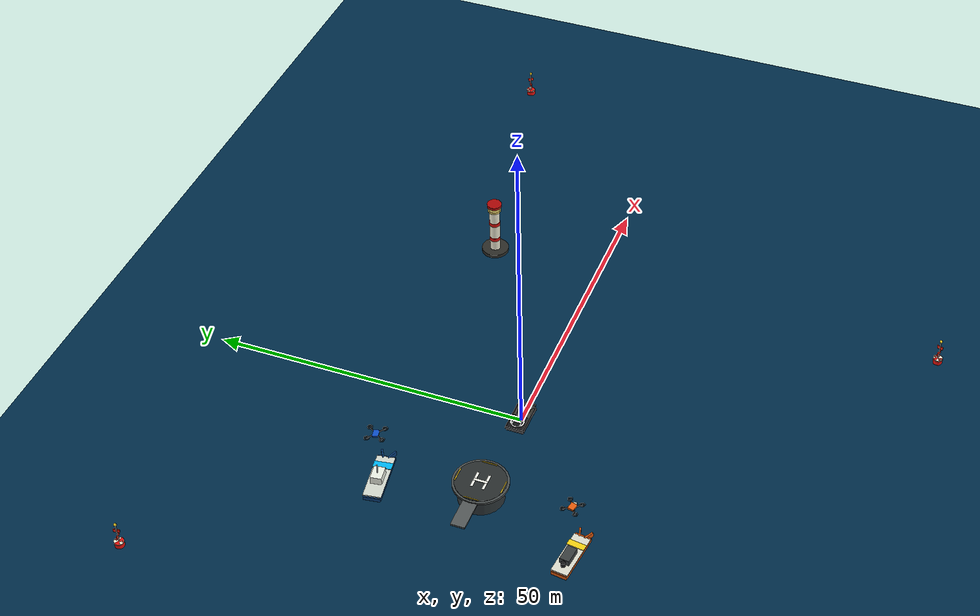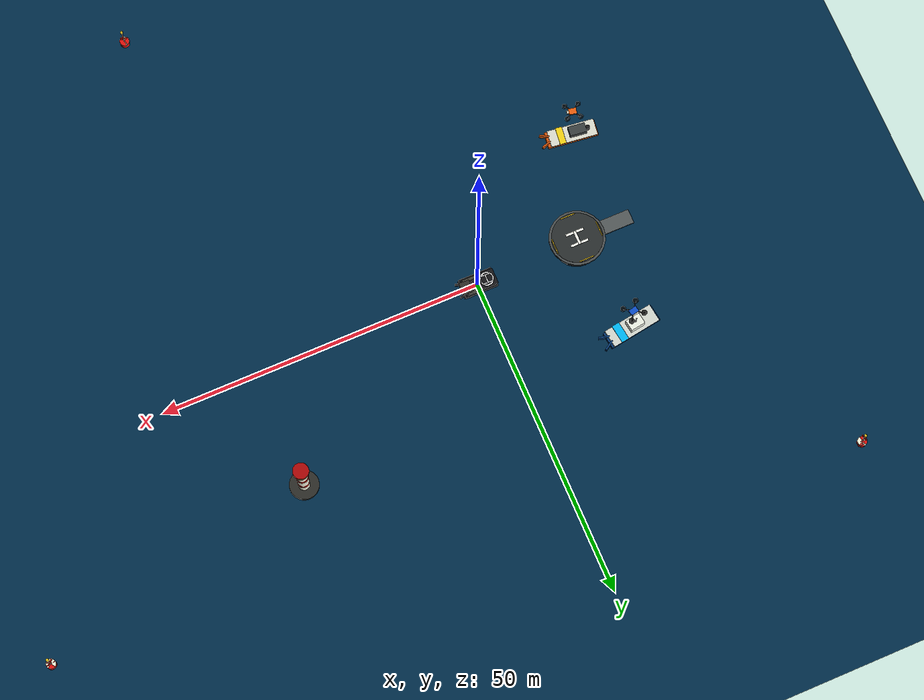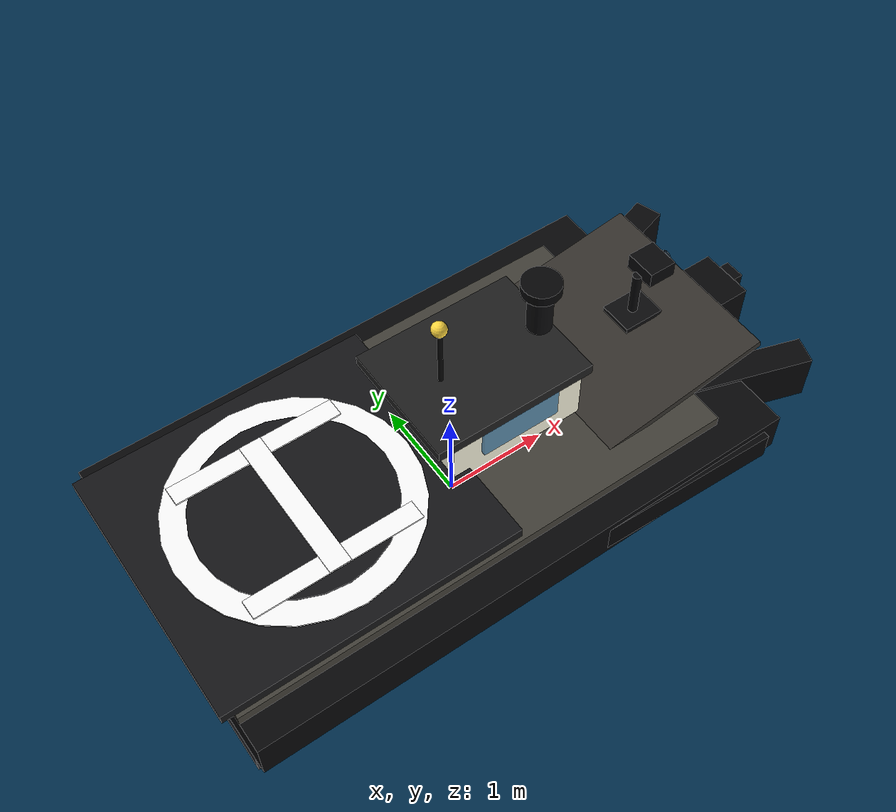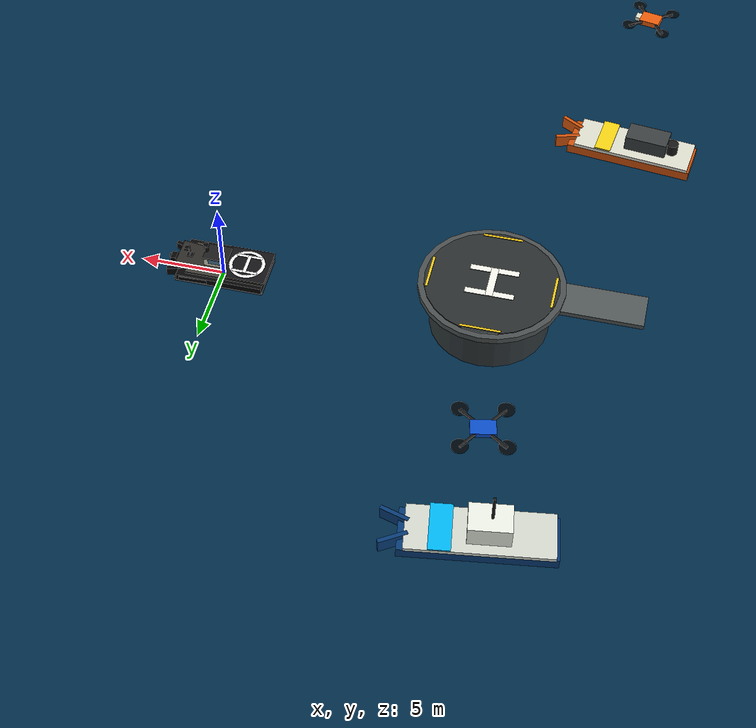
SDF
<sdf version="1.10">
 <world name="default">
  <plugin filename="gz-sim-physics-system" name="gz::sim::systems::Physics"/>
  <plugin filename="gz-sim-user-commands-system" name="gz::sim::systems::UserCommands"/>
  <plugin filename="gz-sim-scene-broadcaster-system" name="gz::sim::systems::SceneBroadcaster"/>
  <plugin filename="gz-sim-contact-system" name="gz::sim::systems::Contact"/>
  <plugin filename="gz-sim-imu-system" name="gz::sim::systems::Imu"/>
  <plugin filename="gz-sim-air-pressure-system" name="gz::sim::systems::AirPressure"/>
  <plugin filename="gz-sim-air-speed-system" name="gz::sim::systems::AirSpeed"/>
  <plugin filename="gz-sim-apply-link-wrench-system" name="gz::sim::systems::ApplyLinkWrench"/>
  <plugin filename="gz-sim-navsat-system" name="gz::sim::systems::NavSat"/>
  <plugin filename="gz-sim-magnetometer-system" name="gz::sim::systems::Magnetometer"/>
  <plugin filename="gz-sim-sensors-system" name="gz::sim::systems::Sensors">
   <render_engine>ogre2</render_engine>
  </plugin>
  <physics type="ode">
   <max_step_size>0.0040000000000000001</max_step_size>
   <real_time_factor>1</real_time_factor>
   <real_time_update_rate>250</real_time_update_rate>
  </physics>
  <gravity>0 0 -9.8000000000000007</gravity>
  <magnetic_field>6.0000000000000002e-06 2.3e-05 -4.1999999999999998e-05</magnetic_field>
  <atmosphere type="adiabatic"/>
  <scene>
   <grid>false</grid>
   <ambient>0.400000006 0.400000006 0.400000006 1</ambient>
   <background>0.699999988 0.699999988 0.699999988 1</background>
   <shadows>true</shadows>
  </scene>
  <spherical_coordinates>
   <surface_model>EARTH_WGS84</surface_model>
   <world_frame_orientation>ENU</world_frame_orientation>
   <latitude_deg>47.397971057728974</latitude_deg>
   <longitude_deg>8.5461637398001464</longitude_deg>
   <elevation>0</elevation>
   <heading_deg>0</heading_deg>
  </spherical_coordinates>
  <model name="ocean_plane">
   <static>true</static>
   <link name="ocean_link">
    <visual name="ocean_visual">
     <pose>0 0 -0.02 0 0 0</pose>
     <geometry><plane><normal>0 0 1</normal><size>1000 1000</size></plane></geometry>
     <material>
      <ambient>0 0.08 0.16 0.45</ambient>
      <diffuse>0 0.18 0.3 0.45</diffuse>
      <specular>0.03 0.05 0.06 1</specular>
     </material>
    </visual>
    <collision name="ocean_collision">
     <geometry><plane><normal>0 0 1</normal><size>300 300</size></plane></geometry>
    </collision>
    <inertial>
     <mass>1</mass>
     <inertia><ixx>1</ixx><ixy>0</ixy><ixz>0</ixz><iyy>1</iyy><iyz>0</iyz><izz>1</izz></inertia>
    </inertial>
   </link>
  </model>
  <include><uri>model://shore_helipad</uri><name>shore_helipad</name><pose>-16 0 0 0 0 0</pose></include>
  <include>
   <uri>model://medium_buoy</uri>
   <name>medium_buoy_west_channel</name>
   <pose>-42 44 0 0 0 0.25</pose>
  </include>
  <include>
   <uri>model://medium_buoy</uri>
   <name>medium_buoy_south_channel</name>
   <pose>34 -56 0 0 0 -0.35</pose>
  </include>
  <include>
   <uri>model://medium_buoy</uri>
   <name>medium_buoy_east_channel</name>
   <pose>78 28 0 0 0 0.7</pose>
  </include>
  <plugin filename="libDroneDeckFollower.so" name="gz::sim::systems::DroneDeckFollower">
   <boat_name>landing_boat</boat_name>
   <drone_name>x500_0</drone_name>
   <deck_offset>-1.518 0 0.56 0 0 0</deck_offset>
   <release_topic>/model/x500_0/release_from_deck</release_topic>
   <relock_duration>4.0</relock_duration>
   <release_vertical_speed>0.9</release_vertical_speed>
   <release_after>1000000</release_after>
   <initially_released>true</initially_released>
  </plugin>
  <model name="navigation_lighthouse">
   <static>true</static>
   <pose>35 18 0 0 0 0</pose>
   <link name="lighthouse_link">
    <collision name="base_collision">
     <pose>0 0 0.3 0 0 0</pose>
     <geometry><cylinder><radius>2.2</radius><length>0.6</length></cylinder></geometry>
    </collision>
    <visual name="base_visual">
     <pose>0 0 0.3 0 0 0</pose>
     <geometry><cylinder><radius>2.2</radius><length>0.6</length></cylinder></geometry>
     <material>
      <ambient>0.12 0.12 0.12 1</ambient>
      <diffuse>0.18 0.18 0.16 1</diffuse>
      <specular>0.05 0.05 0.05 1</specular>
     </material>
    </visual>
    <collision name="tower_collision">
     <pose>0 0 4.4 0 0 0</pose>
     <geometry><cylinder><radius>0.85</radius><length>8.2</length></cylinder></geometry>
    </collision>
    <visual name="tower_white_visual">
     <pose>0 0 4.4 0 0 0</pose>
     <geometry><cylinder><radius>0.85</radius><length>8.2</length></cylinder></geometry>
     <material>
      <ambient>0.85 0.83 0.76 1</ambient>
      <diffuse>0.95 0.93 0.84 1</diffuse>
      <specular>0.2 0.2 0.18 1</specular>
     </material>
    </visual>
    <visual name="red_band_lower_visual">
     <pose>0 0 2.7 0 0 0</pose>
     <geometry><cylinder><radius>0.88</radius><length>0.65</length></cylinder></geometry>
     <material>
      <ambient>0.55 0.04 0.03 1</ambient>
      <diffuse>0.85 0.06 0.04 1</diffuse>
      <specular>0.15 0.03 0.03 1</specular>
     </material>
    </visual>
    <visual name="red_band_upper_visual">
     <pose>0 0 5.8 0 0 0</pose>
     <geometry><cylinder><radius>0.88</radius><length>0.65</length></cylinder></geometry>
     <material>
      <ambient>0.55 0.04 0.03 1</ambient>
      <diffuse>0.85 0.06 0.04 1</diffuse>
      <specular>0.15 0.03 0.03 1</specular>
     </material>
    </visual>
    <visual name="lantern_room_visual">
     <pose>0 0 8.8 0 0 0</pose>
     <geometry><cylinder><radius>1.05</radius><length>0.9</length></cylinder></geometry>
     <material>
      <ambient>0.95 0.82 0.32 0.85</ambient>
      <diffuse>1 0.88 0.4 0.85</diffuse>
      <specular>1 0.95 0.7 1</specular>
     </material>
    </visual>
    <visual name="roof_visual">
     <pose>0 0 9.55 0 0 0</pose>
     <geometry><cylinder><radius>1.2</radius><length>0.45</length></cylinder></geometry>
     <material>
      <ambient>0.45 0.02 0.02 1</ambient>
      <diffuse>0.7 0.03 0.03 1</diffuse>
      <specular>0.18 0.04 0.04 1</specular>
     </material>
    </visual>
    <light name="beacon_light" type="point">
     <pose>0 0 8.95 0 0 0</pose>
     <cast_shadows>false</cast_shadows>
     <intensity>3</intensity>
     <diffuse>1 0.86 0.35 1</diffuse>
     <specular>1 0.9 0.55 1</specular>
     <attenuation>
      <range>80</range>
      <constant>0.6</constant>
      <linear>0.02</linear>
      <quadratic>0.001</quadratic>
     </attenuation>
    </light>
   </link>
  </model>
  <include><uri>model://simple_boat</uri><name>landing_boat</name><pose>0 0 0.55 0 0 0</pose></include>
  <include>
   <uri>model://fleet_boat_blue</uri>
   <name>landing_boat_02</name>
   <pose>-18 15 0.58 0 0 0.15</pose>
  </include>
  <include>
   <uri>model://fleet_boat_orange</uri>
   <name>landing_boat_03</name>
   <pose>-22 -16 0.58 0 0 -0.12</pose>
  </include>
  <include><uri>model://fleet_uav_blue</uri><name>fleet_uav_02</name><pose>-18 15 9.5 0 0 0.2</pose></include>
  <include>
   <uri>model://fleet_uav_orange</uri>
   <name>fleet_uav_03</name>
   <pose>-22 -16 10.5 0 0 -0.2</pose>
  </include>
  <light name="directionallight" type="directional">
   <pose>3.6650413048508694 0.062467871162392719 2 0 0 0</pose>
   <intensity>1</intensity>
   <direction>0 0 -1</direction>
   <diffuse>0.800000012 0.800000012 0.800000012 1</diffuse>
   <specular>0.200000003 0.200000003 0.200000003 1</specular>
   <attenuation>
    <range>1000</range>
    <linear>0.01</linear>
    <constant>0.90000000000000002</constant>
    <quadratic>0.001</quadratic>
   </attenuation>
   <spot><inner_angle>0</inner_angle><outer_angle>0</outer_angle><falloff>0</falloff></spot>
  </light>
 </world>
</sdf>

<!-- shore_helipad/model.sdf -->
<sdf version="1.8">
  <model name="shore_helipad">
    <static>true</static>
    <link name="platform">
      <collision name="foundation_collision">
        <pose>0 0 0 0 0 0</pose>
        <geometry>
          <cylinder>
            <radius>3.45</radius>
            <length>6.0</length>
          </cylinder>
        </geometry>
      </collision>
      <visual name="foundation_visual">
        <pose>0 0 0 0 0 0</pose>
        <geometry>
          <cylinder>
            <radius>3.45</radius>
            <length>6.0</length>
          </cylinder>
        </geometry>
        <material>
          <ambient>0.12 0.14 0.15 1</ambient>
          <diffuse>0.18 0.21 0.22 1</diffuse>
          <specular>0.18 0.2 0.2 1</specular>
        </material>
      </visual>

      <collision name="deck_collision">
        <pose>0 0 3.0 0 0 0</pose>
        <geometry>
          <cylinder>
            <radius>4.2</radius>
            <length>0.36</length>
          </cylinder>
        </geometry>
      </collision>
      <visual name="deck_edge_visual">
        <pose>0 0 3.0 0 0 0</pose>
        <geometry>
          <cylinder>
            <radius>4.2</radius>
            <length>0.36</length>
          </cylinder>
        </geometry>
        <material>
          <ambient>0.22 0.24 0.24 1</ambient>
          <diffuse>0.3 0.32 0.32 1</diffuse>
          <specular>0.2 0.2 0.2 1</specular>
        </material>
      </visual>
      <visual name="deck_surface_visual">
        <pose>0 0 3.205 0 0 0</pose>
        <geometry>
          <cylinder>
            <radius>3.85</radius>
            <length>0.05</length>
          </cylinder>
        </geometry>
        <material>
          <ambient>0.12 0.14 0.14 1</ambient>
          <diffuse>0.17 0.19 0.19 1</diffuse>
          <specular>0.08 0.08 0.08 1</specular>
        </material>
      </visual>

      <collision name="shore_walkway_collision">
        <pose>-5.3 0 2.88 0 0 0</pose>
        <geometry>
          <box>
            <size>6.8 2.2 0.28</size>
          </box>
        </geometry>
      </collision>
      <visual name="shore_walkway_visual">
        <pose>-5.3 0 2.88 0 0 0</pose>
        <geometry>
          <box>
            <size>6.8 2.2 0.28</size>
          </box>
        </geometry>
        <material>
          <ambient>0.25 0.27 0.27 1</ambient>
          <diffuse>0.34 0.36 0.36 1</diffuse>
          <specular>0.12 0.12 0.12 1</specular>
        </material>
      </visual>

      <visual name="h_left_visual">
        <pose>0 -0.9 3.245 0 0 0</pose>
        <geometry>
          <box>
            <size>2.8 0.38 0.04</size>
          </box>
        </geometry>
        <material>
          <ambient>0.92 0.92 0.88 1</ambient>
          <diffuse>1 1 0.96 1</diffuse>
          <specular>0.15 0.15 0.15 1</specular>
        </material>
      </visual>
      <visual name="h_right_visual">
        <pose>0 0.9 3.245 0 0 0</pose>
        <geometry>
          <box>
            <size>2.8 0.38 0.04</size>
          </box>
        </geometry>
        <material>
          <ambient>0.92 0.92 0.88 1</ambient>
          <diffuse>1 1 0.96 1</diffuse>
          <specular>0.15 0.15 0.15 1</specular>
        </material>
      </visual>
      <visual name="h_crossbar_visual">
        <pose>0 0 3.247 0 0 0</pose>
        <geometry>
          <box>
            <size>0.42 2.15 0.045</size>
          </box>
        </geometry>
        <material>
          <ambient>0.92 0.92 0.88 1</ambient>
          <diffuse>1 1 0.96 1</diffuse>
          <specular>0.15 0.15 0.15 1</specular>
        </material>
      </visual>

      <visual name="edge_north_visual">
        <pose>0 3.55 3.245 0 0 0</pose>
        <geometry>
          <box>
            <size>2.3 0.14 0.045</size>
          </box>
        </geometry>
        <material>
          <ambient>0.92 0.72 0.08 1</ambient>
          <diffuse>1 0.82 0.1 1</diffuse>
          <specular>0.35 0.3 0.08 1</specular>
        </material>
      </visual>
      <visual name="edge_south_visual">
        <pose>0 -3.55 3.245 0 0 0</pose>
        <geometry>
          <box>
            <size>2.3 0.14 0.045</size>
          </box>
        </geometry>
        <material>
          <ambient>0.92 0.72 0.08 1</ambient>
          <diffuse>1 0.82 0.1 1</diffuse>
          <specular>0.35 0.3 0.08 1</specular>
        </material>
      </visual>
      <visual name="edge_east_visual">
        <pose>3.55 0 3.245 0 0 1.5708</pose>
        <geometry>
          <box>
            <size>2.3 0.14 0.045</size>
          </box>
        </geometry>
        <material>
          <ambient>0.92 0.72 0.08 1</ambient>
          <diffuse>1 0.82 0.1 1</diffuse>
          <specular>0.35 0.3 0.08 1</specular>
        </material>
      </visual>
      <visual name="edge_west_visual">
        <pose>-3.55 0 3.245 0 0 1.5708</pose>
        <geometry>
          <box>
            <size>2.3 0.14 0.045</size>
          </box>
        </geometry>
        <material>
          <ambient>0.92 0.72 0.08 1</ambient>
          <diffuse>1 0.82 0.1 1</diffuse>
          <specular>0.35 0.3 0.08 1</specular>
        </material>
      </visual>
    </link>
  </model>
</sdf>

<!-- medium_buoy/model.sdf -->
<sdf version="1.8">
  <model name="medium_buoy">
    <static>true</static>
    <link name="body">
      <collision name="base_collision">
        <pose>0 0 0.45 0 0 0</pose>
        <geometry>
          <cylinder>
            <radius>0.7</radius>
            <length>0.9</length>
          </cylinder>
        </geometry>
      </collision>

      <collision name="mast_collision">
        <pose>0 0 2.55 0 0 0</pose>
        <geometry>
          <cylinder>
            <radius>0.11</radius>
            <length>3.3</length>
          </cylinder>
        </geometry>
      </collision>

      <collision name="daymark_lower_collision">
        <pose>0 0 2.0 0 0 0</pose>
        <geometry>
          <box>
            <size>1.05 0.12 0.65</size>
          </box>
        </geometry>
      </collision>

      <collision name="daymark_upper_collision">
        <pose>0 0 3.1 0 0 1.5708</pose>
        <geometry>
          <box>
            <size>1.05 0.12 0.65</size>
          </box>
        </geometry>
      </collision>

      <visual name="base_float">
        <pose>0 0 0.45 0 0 0</pose>
        <geometry>
          <cylinder>
            <radius>0.72</radius>
            <length>0.9</length>
          </cylinder>
        </geometry>
        <material>
          <ambient>0.65 0.05 0.04 1</ambient>
          <diffuse>0.92 0.07 0.05 1</diffuse>
          <specular>0.25 0.04 0.04 1</specular>
        </material>
      </visual>

      <visual name="white_band">
        <pose>0 0 0.82 0 0 0</pose>
        <geometry>
          <cylinder>
            <radius>0.73</radius>
            <length>0.16</length>
          </cylinder>
        </geometry>
        <material>
          <ambient>0.92 0.9 0.82 1</ambient>
          <diffuse>1 0.98 0.88 1</diffuse>
          <specular>0.45 0.45 0.4 1</specular>
        </material>
      </visual>

      <visual name="tower_mast">
        <pose>0 0 2.55 0 0 0</pose>
        <geometry>
          <cylinder>
            <radius>0.08</radius>
            <length>3.3</length>
          </cylinder>
        </geometry>
        <material>
          <ambient>0.04 0.04 0.04 1</ambient>
          <diffuse>0.06 0.06 0.06 1</diffuse>
          <specular>0.2 0.2 0.2 1</specular>
        </material>
      </visual>

      <visual name="daymark_lower">
        <pose>0 0 2.0 0 0 0</pose>
        <geometry>
          <box>
            <size>0.95 0.08 0.55</size>
          </box>
        </geometry>
        <material>
          <ambient>0.85 0.1 0.06 1</ambient>
          <diffuse>1 0.15 0.08 1</diffuse>
          <specular>0.3 0.05 0.03 1</specular>
        </material>
      </visual>

      <visual name="daymark_upper">
        <pose>0 0 3.1 0 0 1.5708</pose>
        <geometry>
          <box>
            <size>0.95 0.08 0.55</size>
          </box>
        </geometry>
        <material>
          <ambient>0.85 0.1 0.06 1</ambient>
          <diffuse>1 0.15 0.08 1</diffuse>
          <specular>0.3 0.05 0.03 1</specular>
        </material>
      </visual>

      <visual name="top_beacon">
        <pose>0 0 4.35 0 0 0</pose>
        <geometry>
          <sphere>
            <radius>0.22</radius>
          </sphere>
        </geometry>
        <material>
          <ambient>1 0.78 0.1 1</ambient>
          <diffuse>1 0.86 0.15 1</diffuse>
          <specular>1 0.9 0.35 1</specular>
        </material>
      </visual>

      <light name="buoy_light" type="point">
        <pose>0 0 4.35 0 0 0</pose>
        <cast_shadows>false</cast_shadows>
        <intensity>1.2</intensity>
        <diffuse>1 0.78 0.1 1</diffuse>
        <specular>1 0.86 0.25 1</specular>
        <attenuation>
          <range>25</range>
          <constant>0.7</constant>
          <linear>0.04</linear>
          <quadratic>0.002</quadratic>
        </attenuation>
      </light>
    </link>
  </model>
</sdf>

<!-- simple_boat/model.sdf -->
<sdf version="1.8">
  <model name="simple_boat">
    <pose>0 0 0.4375 0 0 0</pose>

    <link name="hull">
      <inertial>
        <mass>150.0</mass>
        <inertia>
          <ixx>85.0</ixx>
          <iyy>180.0</iyy>
          <izz>220.0</izz>
          <ixy>0</ixy>
          <ixz>0</ixz>
          <iyz>0</iyz>
        </inertia>
      </inertial>

      <collision name="hull_collision">
        <pose>0 0 -0.0625 0 0 0</pose>
        <geometry>
          <box>
            <size>5.61 3.135 0.625</size>
          </box>
        </geometry>
      </collision>

      <visual name="lower_hull">
        <pose>-0.0825 0 -0.2 0 0 0</pose>
        <geometry>
          <box>
            <size>5.3625 2.7225 0.35</size>
          </box>
        </geometry>
        <material>
          <ambient>0.08 0.08 0.09 1</ambient>
          <diffuse>0.12 0.12 0.13 1</diffuse>
          <specular>0.1 0.1 0.1 1</specular>
        </material>
      </visual>

      <visual name="upper_hull">
        <pose>-0.165 0 0.0625 0 0 0</pose>
        <geometry>
          <box>
            <size>5.1975 3.003 0.4</size>
          </box>
        </geometry>
        <material>
          <ambient>0.015 0.015 0.018 1</ambient>
          <diffuse>0.025 0.025 0.03 1</diffuse>
          <specular>0.18 0.18 0.2 1</specular>
        </material>
      </visual>

      <visual name="bow_side_left">
        <pose>2.409 0.858 0.05 0 0 0.31</pose>
        <geometry>
          <box>
            <size>1.518 0.264 0.475</size>
          </box>
        </geometry>
        <material>
          <ambient>0.015 0.015 0.018 1</ambient>
          <diffuse>0.025 0.025 0.03 1</diffuse>
          <specular>0.18 0.18 0.2 1</specular>
        </material>
      </visual>

      <visual name="bow_side_right">
        <pose>2.409 -0.858 0.05 0 0 -0.31</pose>
        <geometry>
          <box>
            <size>1.518 0.264 0.475</size>
          </box>
        </geometry>
        <material>
          <ambient>0.015 0.015 0.018 1</ambient>
          <diffuse>0.025 0.025 0.03 1</diffuse>
          <specular>0.18 0.18 0.2 1</specular>
        </material>
      </visual>

      <visual name="bow_center_nose">
        <pose>3.003 0 0.05 0 0 0</pose>
        <geometry>
          <box>
            <size>0.33 0.528 0.5</size>
          </box>
        </geometry>
        <material>
          <ambient>0.012 0.012 0.015 1</ambient>
          <diffuse>0.022 0.022 0.026 1</diffuse>
          <specular>0.16 0.16 0.18 1</specular>
        </material>
      </visual>

      <visual name="bow_keel_line">
        <pose>2.5575 0 -0.425 0 1.5708 0</pose>
        <geometry>
          <cylinder>
            <radius>0.035</radius>
            <length>0.9</length>
          </cylinder>
        </geometry>
        <material>
          <ambient>0.006 0.006 0.008 1</ambient>
          <diffuse>0.012 0.012 0.014 1</diffuse>
        </material>
      </visual>

      <visual name="foredeck_slope">
        <pose>1.7325 0 0.45 0 -0.16 0</pose>
        <geometry>
          <box>
            <size>1.815 1.914 0.06875</size>
          </box>
        </geometry>
        <material>
          <ambient>0.12 0.12 0.115 1</ambient>
          <diffuse>0.2 0.19 0.17 1</diffuse>
          <specular>0.08 0.08 0.08 1</specular>
        </material>
      </visual>

      <visual name="bow_stem">
        <pose>3.201 0 0.0375 0 0 0</pose>
        <geometry>
          <box>
            <size>0.132 0.198 0.525</size>
          </box>
        </geometry>
        <material>
          <ambient>0.01 0.01 0.012 1</ambient>
          <diffuse>0.02 0.02 0.024 1</diffuse>
          <specular>0.16 0.16 0.18 1</specular>
        </material>
      </visual>

      <visual name="hull_side_fairing_left">
        <pose>0.0825 1.419 0.05 0 0 0.035</pose>
        <geometry>
          <box>
            <size>4.3725 0.132 0.275</size>
          </box>
        </geometry>
        <material>
          <ambient>0.01 0.01 0.012 1</ambient>
          <diffuse>0.018 0.018 0.022 1</diffuse>
          <specular>0.14 0.14 0.16 1</specular>
        </material>
      </visual>

      <visual name="hull_side_fairing_right">
        <pose>0.0825 -1.419 0.05 0 0 -0.035</pose>
        <geometry>
          <box>
            <size>4.3725 0.132 0.275</size>
          </box>
        </geometry>
        <material>
          <ambient>0.01 0.01 0.012 1</ambient>
          <diffuse>0.018 0.018 0.022 1</diffuse>
          <specular>0.14 0.14 0.16 1</specular>
        </material>
      </visual>

      <visual name="deck">
        <pose>-0.4125 0 0.3125 0 0 0</pose>
        <geometry>
          <box>
            <size>4.7025 2.475 0.1</size>
          </box>
        </geometry>
        <material>
          <ambient>0.18 0.18 0.17 1</ambient>
          <diffuse>0.26 0.25 0.22 1</diffuse>
          <specular>0.08 0.08 0.08 1</specular>
        </material>
      </visual>

      <visual name="cabin_body">
        <pose>0.33 0 0.725 0 0 0</pose>
        <geometry>
          <box>
            <size>1.287 1.023 0.6</size>
          </box>
        </geometry>
        <material>
          <ambient>0.86 0.86 0.8 1</ambient>
          <diffuse>0.96 0.95 0.86 1</diffuse>
          <specular>0.28 0.28 0.24 1</specular>
        </material>
      </visual>

      <visual name="front_window">
        <pose>0.99 0 0.8 0 0.28 0</pose>
        <geometry>
          <box>
            <size>0.05775 0.792 0.3</size>
          </box>
        </geometry>
        <material>
          <ambient>0.05 0.22 0.36 0.65</ambient>
          <diffuse>0.08 0.38 0.62 0.65</diffuse>
          <specular>0.9 0.95 1 1</specular>
        </material>
      </visual>

      <visual name="left_window">
        <pose>0.33 0.53625 0.8 0 0 0</pose>
        <geometry>
          <box>
            <size>0.7425 0.04125 0.275</size>
          </box>
        </geometry>
        <material>
          <ambient>0.05 0.22 0.36 0.65</ambient>
          <diffuse>0.08 0.38 0.62 0.65</diffuse>
          <specular>0.9 0.95 1 1</specular>
        </material>
      </visual>

      <visual name="right_window">
        <pose>0.33 -0.53625 0.8 0 0 0</pose>
        <geometry>
          <box>
            <size>0.7425 0.04125 0.275</size>
          </box>
        </geometry>
        <material>
          <ambient>0.05 0.22 0.36 0.65</ambient>
          <diffuse>0.08 0.38 0.62 0.65</diffuse>
          <specular>0.9 0.95 1 1</specular>
        </material>
      </visual>

      <visual name="cabin_roof">
        <pose>0.2475 0 1.0625 0 0 0</pose>
        <geometry>
          <box>
            <size>1.518 1.188 0.1</size>
          </box>
        </geometry>
        <material>
          <ambient>0.08 0.08 0.08 1</ambient>
          <diffuse>0.12 0.12 0.12 1</diffuse>
          <specular>0.18 0.18 0.18 1</specular>
        </material>
      </visual>

      <collision name="landing_pad_collision">
        <pose>-1.518 0 0.45 0 0 0</pose>
        <geometry>
          <box>
            <size>2.805 2.5575 0.3</size>
          </box>
        </geometry>
        <surface>
          <contact>
            <ode>
              <min_depth>0.001</min_depth>
              <max_vel>0</max_vel>
            </ode>
          </contact>
          <friction>
            <ode>
              <mu>1.5</mu>
              <mu2>1.5</mu2>
            </ode>
          </friction>
        </surface>
      </collision>

      <visual name="landing_pad_visual">
        <pose>-1.518 0 0.475 0 0 0</pose>
        <geometry>
          <box>
            <size>2.72 2.46 0.1</size>
          </box>
        </geometry>
        <material>
          <ambient>0.04 0.04 0.045 1</ambient>
          <diffuse>0.08 0.08 0.09 1</diffuse>
          <specular>0.08 0.08 0.08 1</specular>
        </material>
      </visual>

      <visual name="landing_pad_ring">
        <pose>-1.518 0 0.54375 0 0 0</pose>
        <geometry>
          <cylinder>
            <radius>1.08</radius>
            <length>0.015</length>
          </cylinder>
        </geometry>
        <material>
          <ambient>1 1 1 1</ambient>
          <diffuse>1 1 1 1</diffuse>
        </material>
      </visual>

      <visual name="landing_pad_center">
        <pose>-1.518 0 0.55625 0 0 0</pose>
        <geometry>
          <cylinder>
            <radius>0.86</radius>
            <length>0.0175</length>
          </cylinder>
        </geometry>
        <material>
          <ambient>0.04 0.04 0.045 1</ambient>
          <diffuse>0.08 0.08 0.09 1</diffuse>
        </material>
      </visual>

      <visual name="landing_h_left">
        <pose>-1.518 0.62 0.5725 0 0 0</pose>
        <geometry>
          <box>
            <size>1.55 0.18 0.015</size>
          </box>
        </geometry>
        <material>
          <ambient>1 1 1 1</ambient>
          <diffuse>1 1 1 1</diffuse>
        </material>
      </visual>

      <visual name="landing_h_right">
        <pose>-1.518 -0.62 0.5725 0 0 0</pose>
        <geometry>
          <box>
            <size>1.55 0.18 0.015</size>
          </box>
        </geometry>
        <material>
          <ambient>1 1 1 1</ambient>
          <diffuse>1 1 1 1</diffuse>
        </material>
      </visual>

      <visual name="landing_h_crossbar">
        <pose>-1.518 0 0.5775 0 0 0</pose>
        <geometry>
          <box>
            <size>0.2 1.42 0.015</size>
          </box>
        </geometry>
        <material>
          <ambient>1 1 1 1</ambient>
          <diffuse>1 1 1 1</diffuse>
        </material>
      </visual>

      <visual name="mast">
        <pose>-0.0825 0 1.375 0 0 0</pose>
        <geometry>
          <cylinder>
            <radius>0.0225</radius>
            <length>0.6875</length>
          </cylinder>
        </geometry>
        <material>
          <ambient>0.02 0.02 0.02 1</ambient>
          <diffuse>0.02 0.02 0.02 1</diffuse>
        </material>
      </visual>

      <visual name="nav_light">
        <pose>-0.0825 0 1.7375 0 0 0</pose>
        <geometry>
          <sphere>
            <radius>0.06875</radius>
          </sphere>
        </geometry>
        <material>
          <ambient>1 0.85 0.25 1</ambient>
          <diffuse>1 0.85 0.25 1</diffuse>
          <specular>1 0.9 0.5 1</specular>
        </material>
      </visual>

      <visual name="lidar_mount">
        <pose>0.9075 0 1.175 0 0 0</pose>
        <geometry>
          <cylinder>
            <radius>0.1125</radius>
            <length>0.775</length>
          </cylinder>
        </geometry>
        <material>
          <ambient>0.02 0.02 0.022 1</ambient>
          <diffuse>0.04 0.04 0.045 1</diffuse>
          <specular>0.2 0.2 0.22 1</specular>
        </material>
      </visual>

      <visual name="lidar_body">
        <pose>0.9075 0 1.5875 0 0 0</pose>
        <geometry>
          <cylinder>
            <radius>0.175</radius>
            <length>0.1</length>
          </cylinder>
        </geometry>
        <material>
          <ambient>0.01 0.01 0.012 1</ambient>
          <diffuse>0.02 0.02 0.024 1</diffuse>
          <specular>0.35 0.35 0.38 1</specular>
        </material>
      </visual>

      <visual name="front_camera_mount_base">
        <pose>1.98 0 0.56875 0 0 0</pose>
        <geometry>
          <box>
            <size>0.396 0.33 0.05</size>
          </box>
        </geometry>
        <material>
          <ambient>0.025 0.025 0.028 1</ambient>
          <diffuse>0.04 0.04 0.045 1</diffuse>
          <specular>0.18 0.18 0.2 1</specular>
        </material>
      </visual>

      <visual name="front_camera_mount_post">
        <pose>1.98 0 0.8125 0 0 0</pose>
        <geometry>
          <cylinder>
            <radius>0.04375</radius>
            <length>0.4375</length>
          </cylinder>
        </geometry>
        <material>
          <ambient>0.018 0.018 0.02 1</ambient>
          <diffuse>0.03 0.03 0.034 1</diffuse>
          <specular>0.18 0.18 0.2 1</specular>
        </material>
      </visual>

      <visual name="front_camera_body">
        <pose>2.1285 0 1.075 0 0 0</pose>
        <geometry>
          <box>
            <size>0.264 0.297 0.15</size>
          </box>
        </geometry>
        <material>
          <ambient>0.015 0.015 0.018 1</ambient>
          <diffuse>0.025 0.025 0.03 1</diffuse>
          <specular>0.2 0.2 0.22 1</specular>
        </material>
      </visual>

      <visual name="front_camera_lens">
        <pose>2.28525 0 1.075 0 1.5708 0</pose>
        <geometry>
          <cylinder>
            <radius>0.05625</radius>
            <length>0.03125</length>
          </cylinder>
        </geometry>
        <material>
          <ambient>0.02 0.04 0.06 1</ambient>
          <diffuse>0.03 0.08 0.12 1</diffuse>
          <specular>0.8 0.9 1 1</specular>
        </material>
      </visual>

      <sensor name="front_camera" type="camera">
        <pose>2.31825 0 1.075 0 0 0</pose>
        <topic>/boat/front_camera</topic>
        <update_rate>20</update_rate>
        <camera>
          <horizontal_fov>1.047</horizontal_fov>
          <image>
            <width>640</width>
            <height>360</height>
            <format>R8G8B8</format>
          </image>
          <clip>
            <near>0.05</near>
            <far>200</far>
          </clip>
        </camera>
        <always_on>true</always_on>
        <visualize>true</visualize>
      </sensor>

      <sensor name="front_lidar" type="gpu_lidar">
        <gz_frame_id>landing_boat/hull/front_lidar</gz_frame_id>
        <pose>0.9075 0 1.5625 0 0 0</pose>
        <topic>/boat/scan</topic>
        <update_rate>10</update_rate>
        <ray>
          <scan>
            <horizontal>
              <samples>361</samples>
              <resolution>1</resolution>
              <min_angle>-1.5708</min_angle>
              <max_angle>1.5708</max_angle>
            </horizontal>
          </scan>
          <range>
            <min>0.35</min>
            <max>80</max>
            <resolution>0.02</resolution>
          </range>
          <noise>
            <type>gaussian</type>
            <mean>0</mean>
            <stddev>0.01</stddev>
          </noise>
          <visibility_mask>0x01</visibility_mask>
        </ray>
        <always_on>true</always_on>
        <visualize>true</visualize>
      </sensor>
    </link>

    <plugin
      filename="gz-sim-velocity-control-system"
      name="gz::sim::systems::VelocityControl">
      <topic>/model/simple_boat/cmd_vel</topic>
      <control_linear_velocity>true</control_linear_velocity>
      <control_angular_velocity>true</control_angular_velocity>
    </plugin>

    <plugin
      filename="gz-sim-pose-publisher-system"
      name="gz::sim::systems::PosePublisher">
      <publish_model_pose>true</publish_model_pose>
      <publish_link_pose>false</publish_link_pose>
      <publish_collision_pose>false</publish_collision_pose>
      <publish_visual_pose>false</publish_visual_pose>
      <publish_nested_model_pose>false</publish_nested_model_pose>
      <publish_sensor_pose>false</publish_sensor_pose>
      <use_pose_vector_msg>false</use_pose_vector_msg>
      <topic>/boat/pose</topic>
      <update_frequency>30</update_frequency>
    </plugin>

    <plugin
      filename="libBoatWaveFollower.so"
      name="gz::sim::systems::BoatWaveFollower">
      <mean_z>0.55</mean_z>
      <heave_amplitude>0.11</heave_amplitude>
      <roll_amplitude>0.055</roll_amplitude>
      <pitch_amplitude>0.045</pitch_amplitude>
      <primary_frequency>1.1</primary_frequency>
      <secondary_frequency>1.7</secondary_frequency>
      <wave_number_x>0.35</wave_number_x>
      <wave_number_y>0.22</wave_number_y>
    </plugin>
  </model>
</sdf>

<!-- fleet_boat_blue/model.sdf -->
<sdf version="1.8">
  <model name="fleet_boat_blue">
    <pose>0 0 0.58 0 0 0</pose>
    <link name="hull">
      <inertial>
        <mass>260</mass>
        <inertia>
          <ixx>180</ixx>
          <iyy>620</iyy>
          <izz>720</izz>
        </inertia>
      </inertial>
      <collision name="hull_collision">
        <pose>0 0 0 0 0 0</pose>
        <geometry>
          <box>
            <size>8.6 3.0 1.0</size>
          </box>
        </geometry>
      </collision>
      <visual name="lower_hull">
        <pose>-0.25 0 -0.24 0 0 0</pose>
        <geometry>
          <box>
            <size>8.3 2.6 0.62</size>
          </box>
        </geometry>
        <material>
          <ambient>0.02 0.12 0.22 1</ambient>
          <diffuse>0.03 0.24 0.48 1</diffuse>
          <specular>0.16 0.24 0.3 1</specular>
        </material>
      </visual>
      <visual name="deck">
        <pose>-0.35 0 0.22 0 0 0</pose>
        <geometry>
          <box>
            <size>7.8 2.75 0.22</size>
          </box>
        </geometry>
        <material>
          <ambient>0.72 0.74 0.72 1</ambient>
          <diffuse>0.86 0.88 0.84 1</diffuse>
        </material>
      </visual>
      <visual name="bow_left">
        <pose>4.1 0.72 -0.05 0 0 0.42</pose>
        <geometry>
          <box>
            <size>1.65 0.24 0.8</size>
          </box>
        </geometry>
        <material>
          <ambient>0.02 0.12 0.22 1</ambient>
          <diffuse>0.03 0.24 0.48 1</diffuse>
        </material>
      </visual>
      <visual name="bow_right">
        <pose>4.1 -0.72 -0.05 0 0 -0.42</pose>
        <geometry>
          <box>
            <size>1.65 0.24 0.8</size>
          </box>
        </geometry>
        <material>
          <ambient>0.02 0.12 0.22 1</ambient>
          <diffuse>0.03 0.24 0.48 1</diffuse>
        </material>
      </visual>
      <visual name="cabin">
        <pose>-0.8 0 1.0 0 0 0</pose>
        <geometry>
          <box>
            <size>2.3 1.7 1.25</size>
          </box>
        </geometry>
        <material>
          <ambient>0.88 0.9 0.86 1</ambient>
          <diffuse>0.96 0.98 0.93 1</diffuse>
        </material>
      </visual>
      <visual name="sensor_mast">
        <pose>-0.9 0 2.2 0 0 0</pose>
        <geometry>
          <cylinder>
            <radius>0.08</radius>
            <length>2.2</length>
          </cylinder>
        </geometry>
        <material>
          <ambient>0.05 0.05 0.05 1</ambient>
          <diffuse>0.08 0.08 0.08 1</diffuse>
        </material>
      </visual>
      <visual name="id_band">
        <pose>1.7 0 0.45 0 0 0</pose>
        <geometry>
          <box>
            <size>1.2 2.85 0.08</size>
          </box>
        </geometry>
        <material>
          <ambient>0.0 0.65 1.0 1</ambient>
          <diffuse>0.0 0.75 1.0 1</diffuse>
        </material>
      </visual>
    </link>
    <plugin
      filename="libBoatWaveFollower.so"
      name="gz::sim::systems::BoatWaveFollower">
      <mean_z>0.58</mean_z>
      <heave_amplitude>0.07</heave_amplitude>
      <roll_amplitude>0.026</roll_amplitude>
      <pitch_amplitude>0.022</pitch_amplitude>
      <primary_frequency>0.9</primary_frequency>
      <secondary_frequency>1.45</secondary_frequency>
      <wave_number_x>0.3</wave_number_x>
      <wave_number_y>0.18</wave_number_y>
    </plugin>
  </model>
</sdf>

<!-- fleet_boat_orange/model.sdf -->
<sdf version="1.8">
  <model name="fleet_boat_orange">
    <pose>0 0 0.58 0 0 0</pose>
    <link name="hull">
      <inertial>
        <mass>250</mass>
        <inertia>
          <ixx>170</ixx>
          <iyy>590</iyy>
          <izz>690</izz>
        </inertia>
      </inertial>
      <collision name="hull_collision">
        <pose>0 0 0 0 0 0</pose>
        <geometry>
          <box>
            <size>8.0 2.8 0.95</size>
          </box>
        </geometry>
      </collision>
      <visual name="lower_hull">
        <pose>-0.2 0 -0.22 0 0 0</pose>
        <geometry>
          <box>
            <size>7.8 2.45 0.6</size>
          </box>
        </geometry>
        <material>
          <ambient>0.4 0.12 0.02 1</ambient>
          <diffuse>0.85 0.34 0.05 1</diffuse>
          <specular>0.2 0.18 0.13 1</specular>
        </material>
      </visual>
      <visual name="deck">
        <pose>-0.35 0 0.22 0 0 0</pose>
        <geometry>
          <box>
            <size>7.25 2.55 0.22</size>
          </box>
        </geometry>
        <material>
          <ambient>0.78 0.78 0.72 1</ambient>
          <diffuse>0.9 0.9 0.84 1</diffuse>
        </material>
      </visual>
      <visual name="bow_left">
        <pose>3.85 0.68 -0.04 0 0 0.42</pose>
        <geometry>
          <box>
            <size>1.5 0.24 0.78</size>
          </box>
        </geometry>
        <material>
          <ambient>0.4 0.12 0.02 1</ambient>
          <diffuse>0.85 0.34 0.05 1</diffuse>
        </material>
      </visual>
      <visual name="bow_right">
        <pose>3.85 -0.68 -0.04 0 0 -0.42</pose>
        <geometry>
          <box>
            <size>1.5 0.24 0.78</size>
          </box>
        </geometry>
        <material>
          <ambient>0.4 0.12 0.02 1</ambient>
          <diffuse>0.85 0.34 0.05 1</diffuse>
        </material>
      </visual>
      <visual name="low_cabin">
        <pose>-1.1 0 0.88 0 0 0</pose>
        <geometry>
          <box>
            <size>2.6 1.45 0.92</size>
          </box>
        </geometry>
        <material>
          <ambient>0.16 0.18 0.18 1</ambient>
          <diffuse>0.24 0.26 0.26 1</diffuse>
        </material>
      </visual>
      <visual name="aft_equipment">
        <pose>-2.7 0 0.75 0 0 0</pose>
        <geometry>
          <cylinder>
            <radius>0.35</radius>
            <length>0.7</length>
          </cylinder>
        </geometry>
        <material>
          <ambient>0.06 0.06 0.06 1</ambient>
          <diffuse>0.1 0.1 0.1 1</diffuse>
        </material>
      </visual>
      <visual name="id_band">
        <pose>1.45 0 0.45 0 0 0</pose>
        <geometry>
          <box>
            <size>1.0 2.65 0.08</size>
          </box>
        </geometry>
        <material>
          <ambient>1.0 0.8 0.05 1</ambient>
          <diffuse>1.0 0.86 0.08 1</diffuse>
        </material>
      </visual>
    </link>
    <plugin
      filename="libBoatWaveFollower.so"
      name="gz::sim::systems::BoatWaveFollower">
      <mean_z>0.58</mean_z>
      <heave_amplitude>0.075</heave_amplitude>
      <roll_amplitude>0.03</roll_amplitude>
      <pitch_amplitude>0.025</pitch_amplitude>
      <primary_frequency>0.95</primary_frequency>
      <secondary_frequency>1.5</secondary_frequency>
      <wave_number_x>0.28</wave_number_x>
      <wave_number_y>0.21</wave_number_y>
    </plugin>
  </model>
</sdf>

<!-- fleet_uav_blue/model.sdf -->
<sdf version="1.8">
  <model name="fleet_uav_blue">
    <static>true</static>
    <link name="base_link">
      <visual name="body">
        <pose>0 0 0 0 0 0</pose>
        <geometry>
          <box>
            <size>1.25 0.85 0.26</size>
          </box>
        </geometry>
        <material>
          <ambient>0.04 0.12 0.24 1</ambient>
          <diffuse>0.05 0.32 0.82 1</diffuse>
        </material>
      </visual>
      <visual name="arm_x">
        <pose>0 0 0.02 0 0 0.785</pose>
        <geometry>
          <box>
            <size>3.1 0.12 0.12</size>
          </box>
        </geometry>
        <material>
          <ambient>0.08 0.08 0.08 1</ambient>
          <diffuse>0.12 0.12 0.12 1</diffuse>
        </material>
      </visual>
      <visual name="arm_y">
        <pose>0 0 0.02 0 0 -0.785</pose>
        <geometry>
          <box>
            <size>3.1 0.12 0.12</size>
          </box>
        </geometry>
        <material>
          <ambient>0.08 0.08 0.08 1</ambient>
          <diffuse>0.12 0.12 0.12 1</diffuse>
        </material>
      </visual>
      <visual name="rotor_front_left">
        <pose>1.1 1.1 0.06 0 0 0</pose>
        <geometry>
          <cylinder>
            <radius>0.42</radius>
            <length>0.035</length>
          </cylinder>
        </geometry>
        <material>
          <ambient>0.02 0.02 0.02 0.8</ambient>
          <diffuse>0.03 0.03 0.03 0.8</diffuse>
        </material>
      </visual>
      <visual name="rotor_front_right">
        <pose>1.1 -1.1 0.06 0 0 0</pose>
        <geometry>
          <cylinder>
            <radius>0.42</radius>
            <length>0.035</length>
          </cylinder>
        </geometry>
        <material>
          <ambient>0.02 0.02 0.02 0.8</ambient>
          <diffuse>0.03 0.03 0.03 0.8</diffuse>
        </material>
      </visual>
      <visual name="rotor_back_left">
        <pose>-1.1 1.1 0.06 0 0 0</pose>
        <geometry>
          <cylinder>
            <radius>0.42</radius>
            <length>0.035</length>
          </cylinder>
        </geometry>
        <material>
          <ambient>0.02 0.02 0.02 0.8</ambient>
          <diffuse>0.03 0.03 0.03 0.8</diffuse>
        </material>
      </visual>
      <visual name="rotor_back_right">
        <pose>-1.1 -1.1 0.06 0 0 0</pose>
        <geometry>
          <cylinder>
            <radius>0.42</radius>
            <length>0.035</length>
          </cylinder>
        </geometry>
        <material>
          <ambient>0.02 0.02 0.02 0.8</ambient>
          <diffuse>0.03 0.03 0.03 0.8</diffuse>
        </material>
      </visual>
      <visual name="camera">
        <pose>0.35 0 -0.22 0 0 0</pose>
        <geometry>
          <box>
            <size>0.25 0.25 0.22</size>
          </box>
        </geometry>
        <material>
          <ambient>0.0 0.0 0.0 1</ambient>
          <diffuse>0.02 0.02 0.02 1</diffuse>
        </material>
      </visual>
    </link>
  </model>
</sdf>

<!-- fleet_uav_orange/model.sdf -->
<sdf version="1.8">
  <model name="fleet_uav_orange">
    <static>true</static>
    <link name="base_link">
      <visual name="body">
        <pose>0 0 0 0 0 0</pose>
        <geometry>
          <box>
            <size>1.15 0.9 0.3</size>
          </box>
        </geometry>
        <material>
          <ambient>0.45 0.16 0.02 1</ambient>
          <diffuse>0.95 0.38 0.05 1</diffuse>
        </material>
      </visual>
      <visual name="front_nose">
        <pose>0.72 0 0 0 0 0</pose>
        <geometry>
          <box>
            <size>0.32 0.48 0.22</size>
          </box>
        </geometry>
        <material>
          <ambient>0.78 0.78 0.72 1</ambient>
          <diffuse>0.92 0.92 0.84 1</diffuse>
        </material>
      </visual>
      <visual name="arm_x">
        <pose>0 0 0.03 0 0 0.785</pose>
        <geometry>
          <box>
            <size>2.8 0.14 0.12</size>
          </box>
        </geometry>
        <material>
          <ambient>0.08 0.08 0.08 1</ambient>
          <diffuse>0.12 0.12 0.12 1</diffuse>
        </material>
      </visual>
      <visual name="arm_y">
        <pose>0 0 0.03 0 0 -0.785</pose>
        <geometry>
          <box>
            <size>2.8 0.14 0.12</size>
          </box>
        </geometry>
        <material>
          <ambient>0.08 0.08 0.08 1</ambient>
          <diffuse>0.12 0.12 0.12 1</diffuse>
        </material>
      </visual>
      <visual name="rotor_front_left">
        <pose>1.0 1.0 0.07 0 0 0</pose>
        <geometry>
          <cylinder>
            <radius>0.38</radius>
            <length>0.035</length>
          </cylinder>
        </geometry>
        <material>
          <ambient>0.02 0.02 0.02 0.8</ambient>
          <diffuse>0.03 0.03 0.03 0.8</diffuse>
        </material>
      </visual>
      <visual name="rotor_front_right">
        <pose>1.0 -1.0 0.07 0 0 0</pose>
        <geometry>
          <cylinder>
            <radius>0.38</radius>
            <length>0.035</length>
          </cylinder>
        </geometry>
        <material>
          <ambient>0.02 0.02 0.02 0.8</ambient>
          <diffuse>0.03 0.03 0.03 0.8</diffuse>
        </material>
      </visual>
      <visual name="rotor_back_left">
        <pose>-1.0 1.0 0.07 0 0 0</pose>
        <geometry>
          <cylinder>
            <radius>0.38</radius>
            <length>0.035</length>
          </cylinder>
        </geometry>
        <material>
          <ambient>0.02 0.02 0.02 0.8</ambient>
          <diffuse>0.03 0.03 0.03 0.8</diffuse>
        </material>
      </visual>
      <visual name="rotor_back_right">
        <pose>-1.0 -1.0 0.07 0 0 0</pose>
        <geometry>
          <cylinder>
            <radius>0.38</radius>
            <length>0.035</length>
          </cylinder>
        </geometry>
        <material>
          <ambient>0.02 0.02 0.02 0.8</ambient>
          <diffuse>0.03 0.03 0.03 0.8</diffuse>
        </material>
      </visual>
      <visual name="camera">
        <pose>0.35 0 -0.24 0 0 0</pose>
        <geometry>
          <box>
            <size>0.24 0.24 0.22</size>
          </box>
        </geometry>
        <material>
          <ambient>0.0 0.0 0.0 1</ambient>
          <diffuse>0.02 0.02 0.02 1</diffuse>
        </material>
      </visual>
    </link>
  </model>
</sdf>
